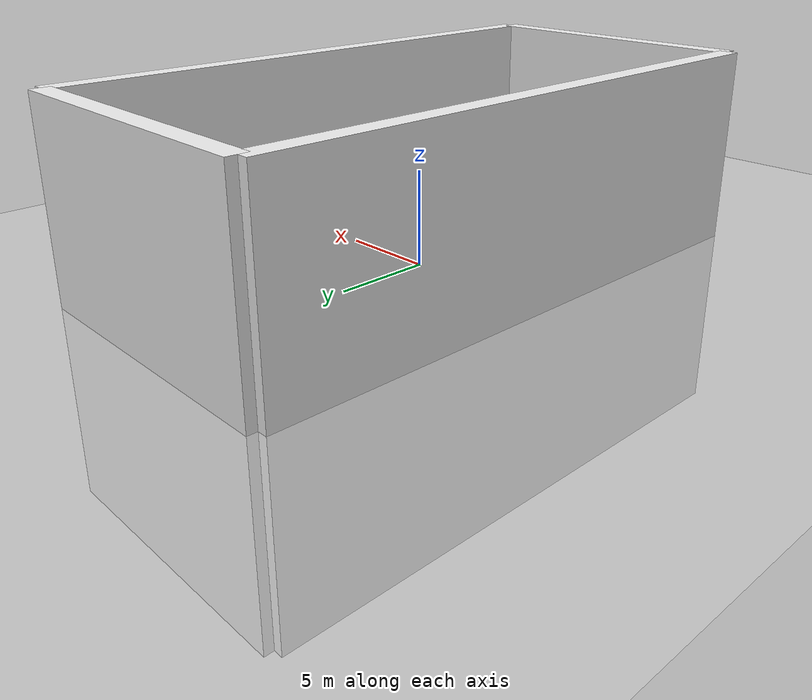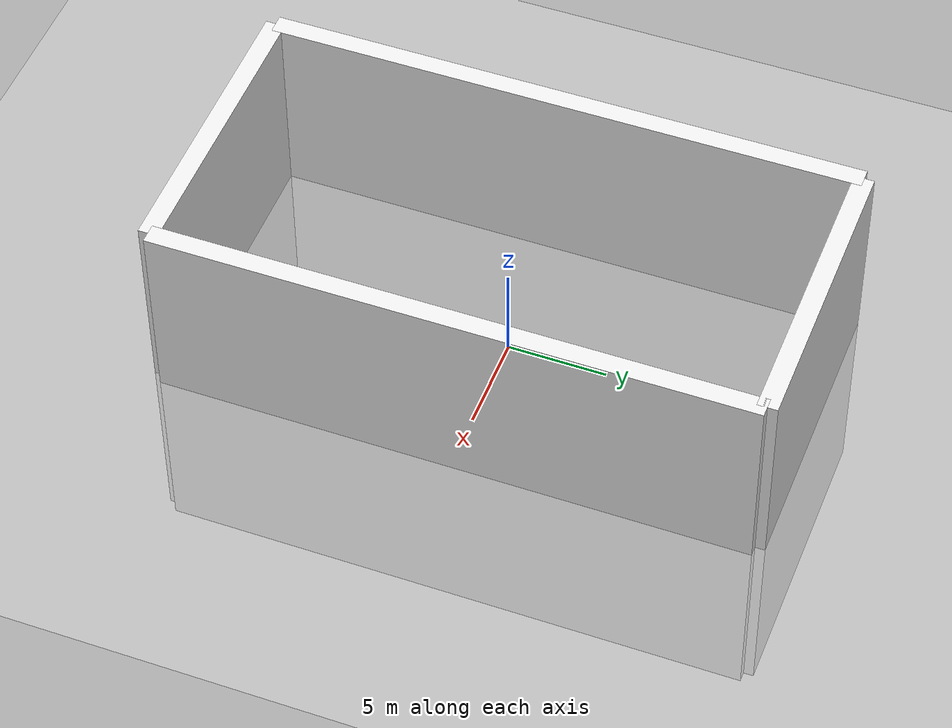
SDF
<sdf version='1.4'>
  <world name='default'>

    <light name='sun' type='directional'>
      <cast_shadows>1</cast_shadows>
      <pose>0 0 500 0 -0 0</pose>
      <diffuse>0.8 0.8 0.8 1</diffuse>
      <specular>0.2 0.2 0.2 1</specular>
      <attenuation>
        <range>1000</range>
        <constant>0.9</constant>
        <linear>0.01</linear>
        <quadratic>0.001</quadratic>
      </attenuation>
      <direction>-0.5 0.1 -0.9</direction>
    </light>

    <model name='ground_plane'>
      <static>1</static>
      <link name='link'>
        <collision name='collision'>
          <geometry>
            <plane>
              <normal>0 0 1</normal>
              <size>10000 10000</size>
            </plane>
          </geometry>
          <surface>
            <friction>
              <ode>
                <mu>100</mu>
                <mu2>50</mu2>
              </ode>
            </friction>
            <bounce/>
            <contact>
              <ode/>
            </contact>
          </surface>
          <max_contacts>10</max_contacts>
        </collision>
        <visual name='visual'>
          <cast_shadows>0</cast_shadows>
          <geometry>
            <plane>
              <normal>0 0 1</normal>
              <size>10000 10000</size>
            </plane>
          </geometry>
          <material>
            <script>
              <uri>file://media/materials/scripts/gazebo.material</uri>
              <name>Gazebo/White</name>
            </script>
          </material>
        </visual>
        <velocity_decay>
          <linear>0</linear>
          <angular>0</angular>
        </velocity_decay>
        <self_collide>0</self_collide>
        <kinematic>0</kinematic>
        <gravity>1</gravity>
      </link>
    </model>

    <physics type='ode'>
      <max_step_size>0.001</max_step_size>
      <real_time_factor>1</real_time_factor>
      <real_time_update_rate>1000</real_time_update_rate>
      <gravity>0 0 -9.8</gravity>
    </physics>
    <scene>
      <ambient>0.4 0.4 0.4 1</ambient>
      <background>0.7 0.7 0.7 1</background>
      <shadows>1</shadows>
    </scene>
    <spherical_coordinates>
      <surface_model>EARTH_WGS84</surface_model>
      <latitude_deg>0</latitude_deg>
      <longitude_deg>0</longitude_deg>
      <elevation>0</elevation>
      <heading_deg>0</heading_deg>
    </spherical_coordinates>

    <model name='cave_1'>
      <pose>0 15 0 0 -0 0</pose> <!--position (x y z roll pitch yaw)-->
      <link name='link'>
        <inertial>
          <mass>1000</mass>
          <inertia>
            <ixx>1000</ixx>
            <ixy>0</ixy>
            <ixz>0</ixz>
            <iyy>1000</iyy>
            <iyz>0</iyz>
            <izz>1000</izz>
          </inertia>
        </inertial>
        <collision name='collision'>
          <geometry>
            <box>
              <size>15 1 20</size><!--size of the object that you can see(width x, length y, height z)-->
            </box>
          </geometry>
          <max_contacts>10</max_contacts>
          <surface>
            <bounce/>
            <friction>
              <ode/>
            </friction>
            <contact>
              <ode/>
            </contact>
          </surface>
        </collision>
        <visual name='visual'>
          <geometry>
            <box>
              <size>15 1 20</size><!--size of the object that you can see(width x, length y, height z)-->
            </box>
          </geometry>
          <material>
            <script>
              <uri>file://media/materials/scripts/gazebo.material</uri>
              <name>Gazebo/White</name>
            </script>
          </material>
        </visual>
        <velocity_decay>
          <linear>0</linear>
          <angular>0</angular>
        </velocity_decay>
        <self_collide>0</self_collide>
        <kinematic>0</kinematic>
        <gravity>1</gravity>
      </link>
      <static>1</static>  <!-- make sure static has value of 1 so as not to move when pushed-->
    </model>

    <model name='cave_2'>
      <pose>0 -15 0 0 -0 0</pose> <!--position (x y z roll pitch yaw)-->
      <link name='link'>
        <inertial>
          <mass>1000</mass>
          <inertia>
            <ixx>1000</ixx>
            <ixy>0</ixy>
            <ixz>0</ixz>
            <iyy>1000</iyy>
            <iyz>0</iyz>
            <izz>1000</izz>
          </inertia>
        </inertial>
        <collision name='collision'>
          <geometry>
            <box>
              <size>15 1 20</size><!--size of the object that you can see(width x, length y, height z)-->
            </box>
          </geometry>
          <max_contacts>10</max_contacts>
          <surface>
            <bounce/>
            <friction>
              <ode/>
            </friction>
            <contact>
              <ode/>
            </contact>
          </surface>
        </collision>
        <visual name='visual'>
          <geometry>
            <box>
              <size>15 1 20</size><!--size of the object that you can see(width x, length y, height z)-->
            </box>
          </geometry>
          <material>
            <script>
              <uri>file://media/materials/scripts/gazebo.material</uri>
              <name>Gazebo/White</name>
            </script>
          </material>
        </visual>
        <velocity_decay>
          <linear>0</linear>
          <angular>0</angular>
        </velocity_decay>
        <self_collide>0</self_collide>
        <kinematic>0</kinematic>
        <gravity>1</gravity>
      </link>
      <static>1</static>  <!-- make sure static has value of 1 so as not to move when pushed-->
    </model>

    <model name='cave_3'>
      <pose>7.5 0 0 0 -0 0</pose> <!--position (x y z roll pitch yaw)-->
      <link name='link'>
        <inertial>
          <mass>1000</mass>
          <inertia>
            <ixx>1000</ixx>
            <ixy>0</ixy>
            <ixz>0</ixz>
            <iyy>1000</iyy>
            <iyz>0</iyz>
            <izz>1000</izz>
          </inertia>
        </inertial>
        <collision name='collision'>
          <geometry>
            <box>
              <size>1 30 20</size><!--size of the object that you can see(width x, length y, height z)-->
            </box>
          </geometry>
          <max_contacts>10</max_contacts>
          <surface>
            <bounce/>
            <friction>
              <ode/>
            </friction>
            <contact>
              <ode/>
            </contact>
          </surface>
        </collision>
        <visual name='visual'>
          <geometry>
            <box>
              <size>1 30 20</size><!--size of the object that you can see(width x, length y, height z)-->
            </box>
          </geometry>
          <material>
            <script>
              <uri>file://media/materials/scripts/gazebo.material</uri>
              <name>Gazebo/White</name>
            </script>
          </material>
        </visual>
        <velocity_decay>
          <linear>0</linear>
          <angular>0</angular>
        </velocity_decay>
        <self_collide>0</self_collide>
        <kinematic>0</kinematic>
        <gravity>1</gravity>
      </link>
      <static>1</static>  <!-- make sure static has value of 1 so as not to move when pushed-->
    </model>

    <model name='cave_4'>
      <pose>-7.5 0 0 0 -0 0</pose> <!--position (x y z roll pitch yaw)-->
      <link name='link'>
        <inertial>
          <mass>1000</mass>
          <inertia>
            <ixx>1000</ixx>
            <ixy>0</ixy>
            <ixz>0</ixz>
            <iyy>1000</iyy>
            <iyz>0</iyz>
            <izz>1000</izz>
          </inertia>
        </inertial>
        <collision name='collision'>
          <geometry>
            <box>
              <size>1 30 20</size><!--size of the object that you can see(width x, length y, height z)-->
            </box>
          </geometry>
          <max_contacts>10</max_contacts>
          <surface>
            <bounce/>
            <friction>
              <ode/>
            </friction>
            <contact>
              <ode/>
            </contact>
          </surface>
        </collision>
        <visual name='visual'>
          <geometry>
            <box>
              <size>1 30 20</size><!--size of the object that you can see(width x, length y, height z)-->
            </box>
          </geometry>
          <material>
            <script>
              <uri>file://media/materials/scripts/gazebo.material</uri>
              <name>Gazebo/White</name>
            </script>
          </material>
        </visual>
        <velocity_decay>
          <linear>0</linear>
          <angular>0</angular>
        </velocity_decay>
        <self_collide>0</self_collide>
        <kinematic>0</kinematic>
        <gravity>1</gravity>
      </link>
      <static>1</static>  <!-- make sure static has value of 1 so as not to move when pushed-->
    </model>

    <gui fullscreen='0'>
      <camera name='user_camera'>
        <pose>3.14796 -7.99288 40.8348 1.15202e-17 1.41964 0.02019</pose>
        <view_controller>orbit</view_controller>
      </camera>
    </gui>
  </world>
</sdf>
